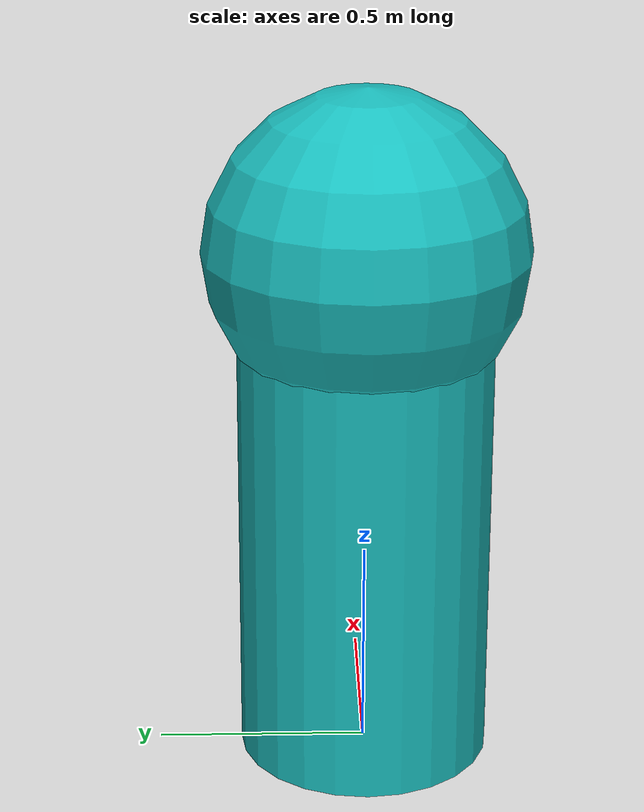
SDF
<?xml version="1.0"?>
<sdf version="1.7">
  <model name="xgc2_geom_capped_pillar">
    <link name="body">
      <kinematic>true</kinematic>
      <gravity>false</gravity>
      <collision name="pillar">
        <pose>0 0 0.625 0 0 0</pose>
        <geometry><cylinder><radius>0.3</radius><length>1.25</length></cylinder></geometry>
      </collision>
      <collision name="cap">
        <pose>0 0 1.25 0 0 0</pose>
        <geometry><sphere><radius>0.38</radius></sphere></geometry>
      </collision>
      <visual name="pillar">
        <pose>0 0 0.625 0 0 0</pose>
        <geometry><cylinder><radius>0.3</radius><length>1.25</length></cylinder></geometry>
        <material><ambient>0.1 0.75 0.75 1</ambient><diffuse>0.1 0.75 0.75 1</diffuse></material>
      </visual>
      <visual name="cap">
        <pose>0 0 1.25 0 0 0</pose>
        <geometry><sphere><radius>0.38</radius></sphere></geometry>
        <material><ambient>0.1 0.75 0.75 1</ambient><diffuse>0.1 0.75 0.75 1</diffuse></material>
      </visual>
    </link>
  </model>
</sdf>
